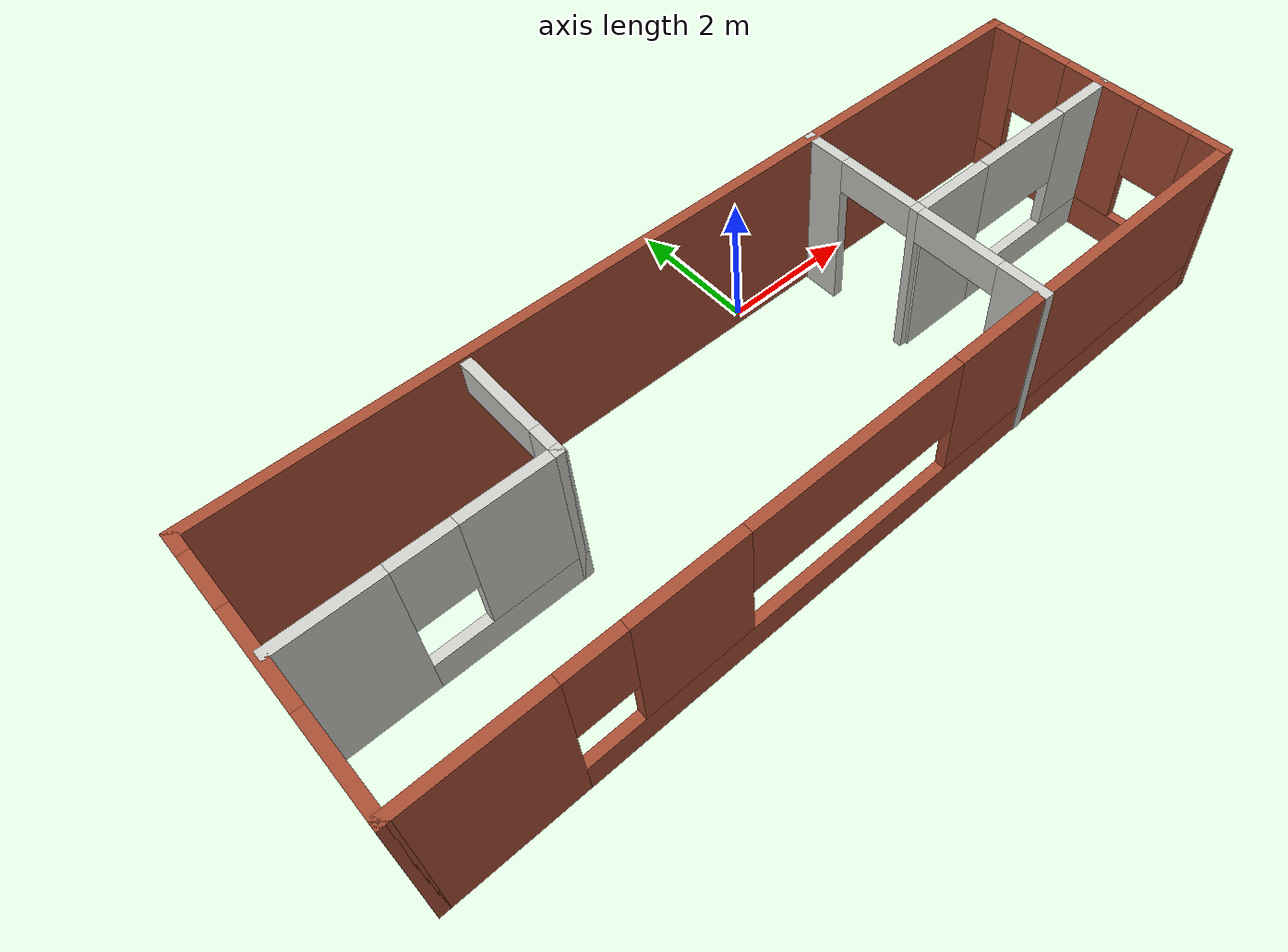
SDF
<?xml version='1.0'?>
<sdf version='1.6'>
  <model name='my_house'>
    <pose frame=''>-1.3 -2.01 0 0 -0 0</pose>
    <link name='Wall_0'>
      <pose frame=''>-6.3 0.005 0 0 -0 -1.5708</pose>
      <visual name='Wall_0_Visual_0'>
        <pose frame=''>-1.8225 0 1.25 0 -0 0</pose>
        <geometry>
          <box>
            <size>0.355 0.15 2.5</size>
          </box>
        </geometry>
        <material>
          <script>
            <uri>file://media/materials/scripts/gazebo.material</uri>
            <name>Gazebo/Bricks</name>
          </script>
          <ambient>1 1 1 1</ambient>
        </material>
        <meta>
          <layer>0</layer>
        </meta>
      </visual>
      <collision name='Wall_0_Collision_0'>
        <geometry>
          <box>
            <size>0.355 0.15 2.5</size>
          </box>
        </geometry>
        <pose frame=''>-1.8225 0 1.25 0 -0 0</pose>
      </collision>
      <visual name='Wall_0_Visual_1'>
        <pose frame=''>1.94 0 1.25 0 -0 0</pose>
        <geometry>
          <box>
            <size>0.12 0.15 2.5</size>
          </box>
        </geometry>
        <material>
          <script>
            <uri>file://media/materials/scripts/gazebo.material</uri>
            <name>Gazebo/Bricks</name>
          </script>
          <ambient>1 1 1 1</ambient>
        </material>
        <meta>
          <layer>0</layer>
        </meta>
      </visual>
      <collision name='Wall_0_Collision_1'>
        <geometry>
          <box>
            <size>0.12 0.15 2.5</size>
          </box>
        </geometry>
        <pose frame=''>1.94 0 1.25 0 -0 0</pose>
      </collision>
      <visual name='Wall_0_Visual_2'>
        <pose frame=''>-0.5375 0 0.25 0 -0 0</pose>
        <geometry>
          <box>
            <size>2.215 0.15 0.5</size>
          </box>
        </geometry>
        <material>
          <script>
            <uri>file://media/materials/scripts/gazebo.material</uri>
            <name>Gazebo/Bricks</name>
          </script>
          <ambient>1 1 1 1</ambient>
        </material>
        <meta>
          <layer>0</layer>
        </meta>
      </visual>
      <collision name='Wall_0_Collision_2'>
        <geometry>
          <box>
            <size>2.215 0.15 0.5</size>
          </box>
        </geometry>
        <pose frame=''>-0.5375 0 0.25 0 -0 0</pose>
      </collision>
      <visual name='Wall_0_Visual_3'>
        <pose frame=''>-0.1375 0 1.5 0 -0 0</pose>
        <geometry>
          <box>
            <size>1.415 0.15 2</size>
          </box>
        </geometry>
        <material>
          <script>
            <uri>file://media/materials/scripts/gazebo.material</uri>
            <name>Gazebo/Bricks</name>
          </script>
          <ambient>1 1 1 1</ambient>
        </material>
        <meta>
          <layer>0</layer>
        </meta>
      </visual>
      <collision name='Wall_0_Collision_3'>
        <geometry>
          <box>
            <size>1.415 0.15 2</size>
          </box>
        </geometry>
        <pose frame=''>-0.1375 0 1.5 0 -0 0</pose>
      </collision>
      <visual name='Wall_0_Visual_4'>
        <pose frame=''>-1.245 0 1.9 0 -0 0</pose>
        <geometry>
          <box>
            <size>0.8 0.15 1.2</size>
          </box>
        </geometry>
        <material>
          <script>
            <uri>file://media/materials/scripts/gazebo.material</uri>
            <name>Gazebo/Bricks</name>
          </script>
          <ambient>1 1 1 1</ambient>
        </material>
        <meta>
          <layer>0</layer>
        </meta>
      </visual>
      <collision name='Wall_0_Collision_4'>
        <geometry>
          <box>
            <size>0.8 0.15 1.2</size>
          </box>
        </geometry>
        <pose frame=''>-1.245 0 1.9 0 -0 0</pose>
      </collision>
      <visual name='Wall_0_Visual_5'>
        <pose frame=''>1.225 0 2.25 0 -0 0</pose>
        <geometry>
          <box>
            <size>1.31 0.15 0.5</size>
          </box>
        </geometry>
        <material>
          <script>
            <uri>file://media/materials/scripts/gazebo.material</uri>
            <name>Gazebo/Bricks</name>
          </script>
          <ambient>1 1 1 1</ambient>
        </material>
        <meta>
          <layer>0</layer>
        </meta>
      </visual>
      <collision name='Wall_0_Collision_5'>
        <geometry>
          <box>
            <size>1.31 0.15 0.5</size>
          </box>
        </geometry>
        <pose frame=''>1.225 0 2.25 0 -0 0</pose>
      </collision>
    </link>
    <link name='Wall_1'>
      <pose frame=''>0 -1.92 0 0 -0 0</pose>
      <visual name='Wall_1_Visual_0'>
        <pose frame=''>-5.4125 0 1.25 0 -0 0</pose>
        <geometry>
          <box>
            <size>1.925 0.15 2.5</size>
          </box>
        </geometry>
        <material>
          <script>
            <uri>file://media/materials/scripts/gazebo.material</uri>
            <name>Gazebo/Bricks</name>
          </script>
          <ambient>1 1 1 1</ambient>
        </material>
        <meta>
          <layer>0</layer>
        </meta>
      </visual>
      <collision name='Wall_1_Collision_0'>
        <geometry>
          <box>
            <size>1.925 0.15 2.5</size>
          </box>
        </geometry>
        <pose frame=''>-5.4125 0 1.25 0 -0 0</pose>
      </collision>
      <visual name='Wall_1_Visual_1'>
        <pose frame=''>0.9625 0 0.25 0 -0 0</pose>
        <geometry>
          <box>
            <size>10.825 0.15 0.5</size>
          </box>
        </geometry>
        <material>
          <script>
            <uri>file://media/materials/scripts/gazebo.material</uri>
            <name>Gazebo/Bricks</name>
          </script>
          <ambient>1 1 1 1</ambient>
        </material>
        <meta>
          <layer>0</layer>
        </meta>
      </visual>
      <collision name='Wall_1_Collision_1'>
        <geometry>
          <box>
            <size>10.825 0.15 0.5</size>
          </box>
        </geometry>
        <pose frame=''>0.9625 0 0.25 0 -0 0</pose>
      </collision>
      <visual name='Wall_1_Visual_2'>
        <pose frame=''>-2.87 0 1.5 0 -0 0</pose>
        <geometry>
          <box>
            <size>1.56 0.15 2</size>
          </box>
        </geometry>
        <material>
          <script>
            <uri>file://media/materials/scripts/gazebo.material</uri>
            <name>Gazebo/Bricks</name>
          </script>
          <ambient>1 1 1 1</ambient>
        </material>
        <meta>
          <layer>0</layer>
        </meta>
      </visual>
      <collision name='Wall_1_Collision_2'>
        <geometry>
          <box>
            <size>1.56 0.15 2</size>
          </box>
        </geometry>
        <pose frame=''>-2.87 0 1.5 0 -0 0</pose>
      </collision>
      <visual name='Wall_1_Visual_3'>
        <pose frame=''>3.7325 0 1.5 0 -0 0</pose>
        <geometry>
          <box>
            <size>5.285 0.15 2</size>
          </box>
        </geometry>
        <material>
          <script>
            <uri>file://media/materials/scripts/gazebo.material</uri>
            <name>Gazebo/Bricks</name>
          </script>
          <ambient>1 1 1 1</ambient>
        </material>
        <meta>
          <layer>0</layer>
        </meta>
      </visual>
      <collision name='Wall_1_Collision_3'>
        <geometry>
          <box>
            <size>5.285 0.15 2</size>
          </box>
        </geometry>
        <pose frame=''>3.7325 0 1.5 0 -0 0</pose>
      </collision>
      <visual name='Wall_1_Visual_4'>
        <pose frame=''>-4.05 0 1.9 0 -0 0</pose>
        <geometry>
          <box>
            <size>0.8 0.15 1.2</size>
          </box>
        </geometry>
        <material>
          <script>
            <uri>file://media/materials/scripts/gazebo.material</uri>
            <name>Gazebo/Bricks</name>
          </script>
          <ambient>1 1 1 1</ambient>
        </material>
        <meta>
          <layer>0</layer>
        </meta>
      </visual>
      <collision name='Wall_1_Collision_4'>
        <geometry>
          <box>
            <size>0.8 0.15 1.2</size>
          </box>
        </geometry>
        <pose frame=''>-4.05 0 1.9 0 -0 0</pose>
      </collision>
      <visual name='Wall_1_Visual_5'>
        <pose frame=''>-0.5 0 1.9 0 -0 0</pose>
        <geometry>
          <box>
            <size>3.18 0.15 1.2</size>
          </box>
        </geometry>
        <material>
          <script>
            <uri>file://media/materials/scripts/gazebo.material</uri>
            <name>Gazebo/Bricks</name>
          </script>
          <ambient>1 1 1 1</ambient>
        </material>
        <meta>
          <layer>0</layer>
        </meta>
      </visual>
      <collision name='Wall_1_Collision_5'>
        <geometry>
          <box>
            <size>3.18 0.15 1.2</size>
          </box>
        </geometry>
        <pose frame=''>-0.5 0 1.9 0 -0 0</pose>
      </collision>
    </link>
    <link name='Wall_11'>
      <pose frame=''>2.59 -0.005 0 0 -0 -1.5708</pose>
      <visual name='Wall_11_Visual_0'>
        <pose frame=''>-1.6525 0 1.25 0 -0 0</pose>
        <geometry>
          <box>
            <size>0.695 0.15 2.5</size>
          </box>
        </geometry>
        <material>
          <script>
            <uri>file://media/materials/scripts/gazebo.material</uri>
            <name>Gazebo/CeilingTiled</name>
          </script>
          <ambient>1 1 1 1</ambient>
        </material>
        <meta>
          <layer>0</layer>
        </meta>
      </visual>
      <collision name='Wall_11_Collision_0'>
        <geometry>
          <box>
            <size>0.695 0.15 2.5</size>
          </box>
        </geometry>
        <pose frame=''>-1.6525 0 1.25 0 -0 0</pose>
      </collision>
      <visual name='Wall_11_Visual_1'>
        <pose frame=''>-0.07 0 1.25 0 -0 0</pose>
        <geometry>
          <box>
            <size>0.13 0.15 2.5</size>
          </box>
        </geometry>
        <material>
          <script>
            <uri>file://media/materials/scripts/gazebo.material</uri>
            <name>Gazebo/CeilingTiled</name>
          </script>
          <ambient>1 1 1 1</ambient>
        </material>
        <meta>
          <layer>0</layer>
        </meta>
      </visual>
      <collision name='Wall_11_Collision_1'>
        <geometry>
          <box>
            <size>0.13 0.15 2.5</size>
          </box>
        </geometry>
        <pose frame=''>-0.07 0 1.25 0 -0 0</pose>
      </collision>
      <visual name='Wall_11_Visual_2'>
        <pose frame=''>1.6325 0 1.25 0 -0 0</pose>
        <geometry>
          <box>
            <size>0.735 0.15 2.5</size>
          </box>
        </geometry>
        <material>
          <script>
            <uri>file://media/materials/scripts/gazebo.material</uri>
            <name>Gazebo/CeilingTiled</name>
          </script>
          <ambient>1 1 1 1</ambient>
        </material>
        <meta>
          <layer>0</layer>
        </meta>
      </visual>
      <collision name='Wall_11_Collision_2'>
        <geometry>
          <box>
            <size>0.735 0.15 2.5</size>
          </box>
        </geometry>
        <pose frame=''>1.6325 0 1.25 0 -0 0</pose>
      </collision>
      <visual name='Wall_11_Visual_3'>
        <pose frame=''>-0.72 0 2.25 0 -0 0</pose>
        <geometry>
          <box>
            <size>1.17 0.15 0.5</size>
          </box>
        </geometry>
        <material>
          <script>
            <uri>file://media/materials/scripts/gazebo.material</uri>
            <name>Gazebo/CeilingTiled</name>
          </script>
          <ambient>1 1 1 1</ambient>
        </material>
        <meta>
          <layer>0</layer>
        </meta>
      </visual>
      <collision name='Wall_11_Collision_3'>
        <geometry>
          <box>
            <size>1.17 0.15 0.5</size>
          </box>
        </geometry>
        <pose frame=''>-0.72 0 2.25 0 -0 0</pose>
      </collision>
      <visual name='Wall_11_Visual_4'>
        <pose frame=''>0.63 0 2.25 0 -0 0</pose>
        <geometry>
          <box>
            <size>1.27 0.15 0.5</size>
          </box>
        </geometry>
        <material>
          <script>
            <uri>file://media/materials/scripts/gazebo.material</uri>
            <name>Gazebo/CeilingTiled</name>
          </script>
          <ambient>1 1 1 1</ambient>
        </material>
        <meta>
          <layer>0</layer>
        </meta>
      </visual>
      <collision name='Wall_11_Collision_4'>
        <geometry>
          <box>
            <size>1.27 0.15 0.5</size>
          </box>
        </geometry>
        <pose frame=''>0.63 0 2.25 0 -0 0</pose>
      </collision>
    </link>
    <link name='Wall_13'>
      <pose frame=''>4.49 0.04 0 0 -0 0</pose>
      <visual name='Wall_13_Visual_0'>
        <pose frame=''>-1.2675 0 1.25 0 -0 0</pose>
        <geometry>
          <box>
            <size>1.215 0.15 2.5</size>
          </box>
        </geometry>
        <material>
          <script>
            <uri>file://media/materials/scripts/gazebo.material</uri>
            <name>Gazebo/CeilingTiled</name>
          </script>
          <ambient>1 1 1 1</ambient>
        </material>
        <meta>
          <layer>0</layer>
        </meta>
      </visual>
      <collision name='Wall_13_Collision_0'>
        <geometry>
          <box>
            <size>1.215 0.15 2.5</size>
          </box>
        </geometry>
        <pose frame=''>-1.2675 0 1.25 0 -0 0</pose>
      </collision>
      <visual name='Wall_13_Visual_1'>
        <pose frame=''>0.6075 0 0.25 0 -0 0</pose>
        <geometry>
          <box>
            <size>2.535 0.15 0.5</size>
          </box>
        </geometry>
        <material>
          <script>
            <uri>file://media/materials/scripts/gazebo.material</uri>
            <name>Gazebo/CeilingTiled</name>
          </script>
          <ambient>1 1 1 1</ambient>
        </material>
        <meta>
          <layer>0</layer>
        </meta>
      </visual>
      <collision name='Wall_13_Collision_1'>
        <geometry>
          <box>
            <size>2.535 0.15 0.5</size>
          </box>
        </geometry>
        <pose frame=''>0.6075 0 0.25 0 -0 0</pose>
      </collision>
      <visual name='Wall_13_Visual_2'>
        <pose frame=''>1.3825 0 1.5 0 -0 0</pose>
        <geometry>
          <box>
            <size>0.985 0.15 2</size>
          </box>
        </geometry>
        <material>
          <script>
            <uri>file://media/materials/scripts/gazebo.material</uri>
            <name>Gazebo/CeilingTiled</name>
          </script>
          <ambient>1 1 1 1</ambient>
        </material>
        <meta>
          <layer>0</layer>
        </meta>
      </visual>
      <collision name='Wall_13_Collision_2'>
        <geometry>
          <box>
            <size>0.985 0.15 2</size>
          </box>
        </geometry>
        <pose frame=''>1.3825 0 1.5 0 -0 0</pose>
      </collision>
      <visual name='Wall_13_Visual_3'>
        <pose frame=''>0.115 0 1.9 0 -0 0</pose>
        <geometry>
          <box>
            <size>1.55 0.15 1.2</size>
          </box>
        </geometry>
        <material>
          <script>
            <uri>file://media/materials/scripts/gazebo.material</uri>
            <name>Gazebo/CeilingTiled</name>
          </script>
          <ambient>1 1 1 1</ambient>
        </material>
        <meta>
          <layer>0</layer>
        </meta>
      </visual>
      <collision name='Wall_13_Collision_3'>
        <geometry>
          <box>
            <size>1.55 0.15 1.2</size>
          </box>
        </geometry>
        <pose frame=''>0.115 0 1.9 0 -0 0</pose>
      </collision>
    </link>
    <link name='Wall_2'>
      <pose frame=''>6.3 0.005 0 0 -0 1.5708</pose>
      <visual name='Wall_2_Visual_0'>
        <pose frame=''>-1.7175 0 1.25 0 -0 0</pose>
        <geometry>
          <box>
            <size>0.565 0.15 2.5</size>
          </box>
        </geometry>
        <material>
          <script>
            <uri>file://media/materials/scripts/gazebo.material</uri>
            <name>Gazebo/Bricks</name>
          </script>
          <ambient>1 1 1 1</ambient>
        </material>
        <meta>
          <layer>0</layer>
        </meta>
      </visual>
      <collision name='Wall_2_Collision_0'>
        <geometry>
          <box>
            <size>0.565 0.15 2.5</size>
          </box>
        </geometry>
        <pose frame=''>-1.7175 0 1.25 0 -0 0</pose>
      </collision>
      <visual name='Wall_2_Visual_1'>
        <pose frame=''>0.2825 0 0.25 0 -0 0</pose>
        <geometry>
          <box>
            <size>3.435 0.15 0.5</size>
          </box>
        </geometry>
        <material>
          <script>
            <uri>file://media/materials/scripts/gazebo.material</uri>
            <name>Gazebo/Bricks</name>
          </script>
          <ambient>1 1 1 1</ambient>
        </material>
        <meta>
          <layer>0</layer>
        </meta>
      </visual>
      <collision name='Wall_2_Collision_1'>
        <geometry>
          <box>
            <size>3.435 0.15 0.5</size>
          </box>
        </geometry>
        <pose frame=''>0.2825 0 0.25 0 -0 0</pose>
      </collision>
      <visual name='Wall_2_Visual_2'>
        <pose frame=''>-0.015 0 1.5 0 -0 0</pose>
        <geometry>
          <box>
            <size>1.24 0.15 2</size>
          </box>
        </geometry>
        <material>
          <script>
            <uri>file://media/materials/scripts/gazebo.material</uri>
            <name>Gazebo/Bricks</name>
          </script>
          <ambient>1 1 1 1</ambient>
        </material>
        <meta>
          <layer>0</layer>
        </meta>
      </visual>
      <collision name='Wall_2_Collision_2'>
        <geometry>
          <box>
            <size>1.24 0.15 2</size>
          </box>
        </geometry>
        <pose frame=''>-0.015 0 1.5 0 -0 0</pose>
      </collision>
      <visual name='Wall_2_Visual_3'>
        <pose frame=''>1.7025 0 1.5 0 -0 0</pose>
        <geometry>
          <box>
            <size>0.595 0.15 2</size>
          </box>
        </geometry>
        <material>
          <script>
            <uri>file://media/materials/scripts/gazebo.material</uri>
            <name>Gazebo/Bricks</name>
          </script>
          <ambient>1 1 1 1</ambient>
        </material>
        <meta>
          <layer>0</layer>
        </meta>
      </visual>
      <collision name='Wall_2_Collision_3'>
        <geometry>
          <box>
            <size>0.595 0.15 2</size>
          </box>
        </geometry>
        <pose frame=''>1.7025 0 1.5 0 -0 0</pose>
      </collision>
      <visual name='Wall_2_Visual_4'>
        <pose frame=''>-1.035 0 1.9 0 -0 0</pose>
        <geometry>
          <box>
            <size>0.8 0.15 1.2</size>
          </box>
        </geometry>
        <material>
          <script>
            <uri>file://media/materials/scripts/gazebo.material</uri>
            <name>Gazebo/Bricks</name>
          </script>
          <ambient>1 1 1 1</ambient>
        </material>
        <meta>
          <layer>0</layer>
        </meta>
      </visual>
      <collision name='Wall_2_Collision_4'>
        <geometry>
          <box>
            <size>0.8 0.15 1.2</size>
          </box>
        </geometry>
        <pose frame=''>-1.035 0 1.9 0 -0 0</pose>
      </collision>
      <visual name='Wall_2_Visual_5'>
        <pose frame=''>1.005 0 1.9 0 -0 0</pose>
        <geometry>
          <box>
            <size>0.8 0.15 1.2</size>
          </box>
        </geometry>
        <material>
          <script>
            <uri>file://media/materials/scripts/gazebo.material</uri>
            <name>Gazebo/Bricks</name>
          </script>
          <ambient>1 1 1 1</ambient>
        </material>
        <meta>
          <layer>0</layer>
        </meta>
      </visual>
      <collision name='Wall_2_Collision_5'>
        <geometry>
          <box>
            <size>0.8 0.15 1.2</size>
          </box>
        </geometry>
        <pose frame=''>1.005 0 1.9 0 -0 0</pose>
      </collision>
    </link>
    <link name='Wall_3'>
      <collision name='Wall_3_Collision'>
        <geometry>
          <box>
            <size>12.75 0.15 2.5</size>
          </box>
        </geometry>
        <pose frame=''>0 0 1.25 0 -0 0</pose>
      </collision>
      <visual name='Wall_3_Visual'>
        <pose frame=''>0 0 1.25 0 -0 0</pose>
        <geometry>
          <box>
            <size>12.75 0.15 2.5</size>
          </box>
        </geometry>
        <material>
          <script>
            <uri>file://media/materials/scripts/gazebo.material</uri>
            <name>Gazebo/Bricks</name>
          </script>
          <ambient>1 1 1 1</ambient>
        </material>
        <meta>
          <layer>0</layer>
        </meta>
      </visual>
      <pose frame=''>0 1.93 0 0 -0 3.14159</pose>
    </link>
    <link name='Wall_7'>
      <pose frame=''>-4.565 0.14 0 0 -0 0</pose>
      <visual name='Wall_7_Visual_0'>
        <pose frame=''>-1.0725 0 1.25 0 -0 0</pose>
        <geometry>
          <box>
            <size>1.355 0.15 2.5</size>
          </box>
        </geometry>
        <material>
          <script>
            <uri>file://media/materials/scripts/gazebo.material</uri>
            <name>Gazebo/CeilingTiled</name>
          </script>
          <ambient>1 1 1 1</ambient>
        </material>
        <meta>
          <layer>0</layer>
        </meta>
      </visual>
      <collision name='Wall_7_Collision_0'>
        <geometry>
          <box>
            <size>1.355 0.15 2.5</size>
          </box>
        </geometry>
        <pose frame=''>-1.0725 0 1.25 0 -0 0</pose>
      </collision>
      <visual name='Wall_7_Visual_1'>
        <pose frame=''>0.6775 0 0.25 0 -0 0</pose>
        <geometry>
          <box>
            <size>2.145 0.15 0.5</size>
          </box>
        </geometry>
        <material>
          <script>
            <uri>file://media/materials/scripts/gazebo.material</uri>
            <name>Gazebo/CeilingTiled</name>
          </script>
          <ambient>1 1 1 1</ambient>
        </material>
        <meta>
          <layer>0</layer>
        </meta>
      </visual>
      <collision name='Wall_7_Collision_1'>
        <geometry>
          <box>
            <size>2.145 0.15 0.5</size>
          </box>
        </geometry>
        <pose frame=''>0.6775 0 0.25 0 -0 0</pose>
      </collision>
      <visual name='Wall_7_Visual_2'>
        <pose frame=''>1.0775 0 1.5 0 -0 0</pose>
        <geometry>
          <box>
            <size>1.345 0.15 2</size>
          </box>
        </geometry>
        <material>
          <script>
            <uri>file://media/materials/scripts/gazebo.material</uri>
            <name>Gazebo/CeilingTiled</name>
          </script>
          <ambient>1 1 1 1</ambient>
        </material>
        <meta>
          <layer>0</layer>
        </meta>
      </visual>
      <collision name='Wall_7_Collision_2'>
        <geometry>
          <box>
            <size>1.345 0.15 2</size>
          </box>
        </geometry>
        <pose frame=''>1.0775 0 1.5 0 -0 0</pose>
      </collision>
      <visual name='Wall_7_Visual_3'>
        <pose frame=''>0.005 0 1.9 0 -0 0</pose>
        <geometry>
          <box>
            <size>0.8 0.15 1.2</size>
          </box>
        </geometry>
        <material>
          <script>
            <uri>file://media/materials/scripts/gazebo.material</uri>
            <name>Gazebo/CeilingTiled</name>
          </script>
          <ambient>1 1 1 1</ambient>
        </material>
        <meta>
          <layer>0</layer>
        </meta>
      </visual>
      <collision name='Wall_7_Collision_3'>
        <geometry>
          <box>
            <size>0.8 0.15 1.2</size>
          </box>
        </geometry>
        <pose frame=''>0.005 0 1.9 0 -0 0</pose>
      </collision>
    </link>
    <link name='Wall_9'>
      <pose frame=''>-2.89 0.94 0 0 -0 1.5708</pose>
      <visual name='Wall_9_Visual_0'>
        <pose frame=''>-0.635 0 1.25 0 -0 0</pose>
        <geometry>
          <box>
            <size>0.48 0.15 2.5</size>
          </box>
        </geometry>
        <material>
          <script>
            <uri>file://media/materials/scripts/gazebo.material</uri>
            <name>Gazebo/CeilingTiled</name>
          </script>
          <ambient>1 1 1 1</ambient>
        </material>
        <meta>
          <layer>0</layer>
        </meta>
      </visual>
      <collision name='Wall_9_Collision_0'>
        <geometry>
          <box>
            <size>0.48 0.15 2.5</size>
          </box>
        </geometry>
        <pose frame=''>-0.635 0 1.25 0 -0 0</pose>
      </collision>
      <visual name='Wall_9_Visual_1'>
        <pose frame=''>0.24 0 2.25 0 -0 0</pose>
        <geometry>
          <box>
            <size>1.27 0.15 0.5</size>
          </box>
        </geometry>
        <material>
          <script>
            <uri>file://media/materials/scripts/gazebo.material</uri>
            <name>Gazebo/CeilingTiled</name>
          </script>
          <ambient>1 1 1 1</ambient>
        </material>
        <meta>
          <layer>0</layer>
        </meta>
      </visual>
      <collision name='Wall_9_Collision_1'>
        <geometry>
          <box>
            <size>1.27 0.15 0.5</size>
          </box>
        </geometry>
        <pose frame=''>0.24 0 2.25 0 -0 0</pose>
      </collision>
    </link>
    <static>1</static>
  </model>
</sdf>
